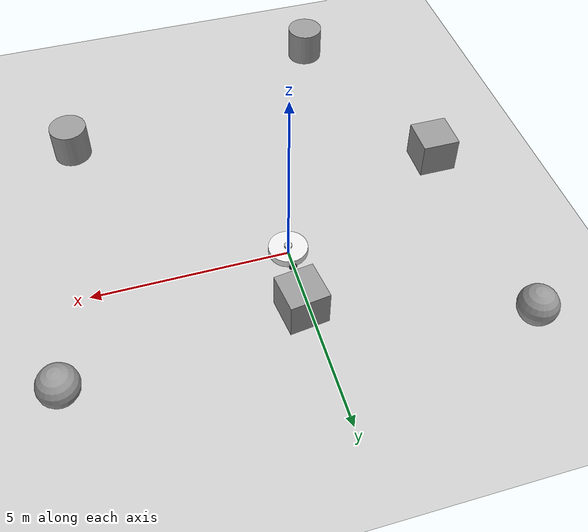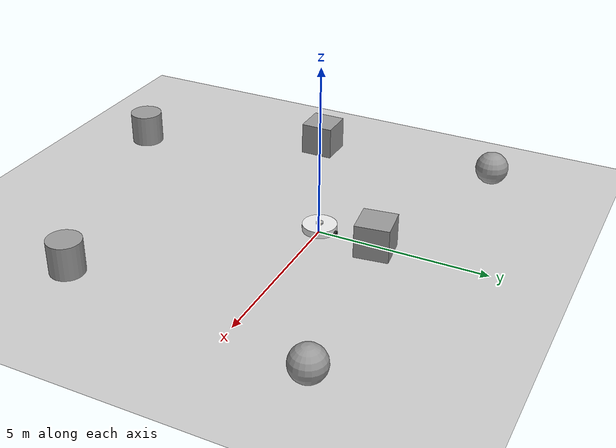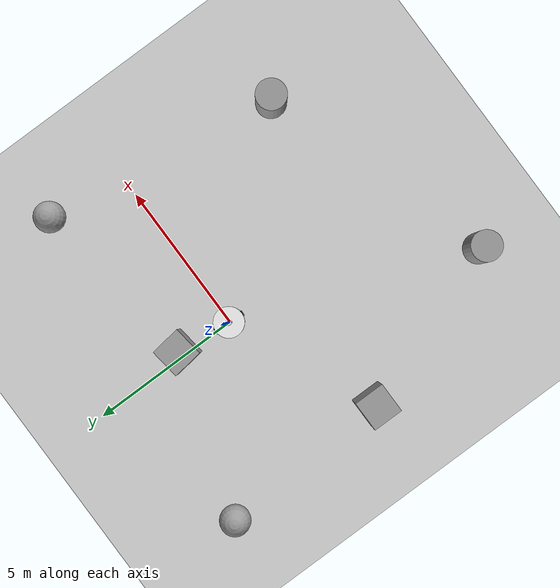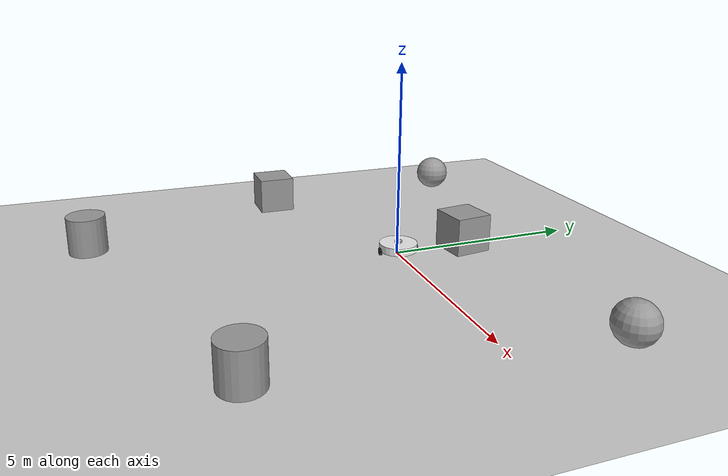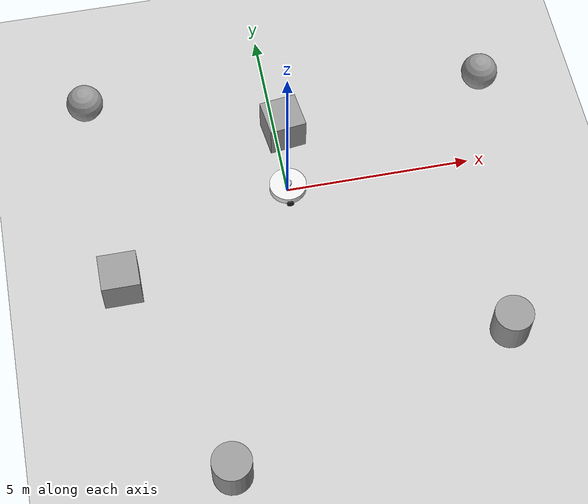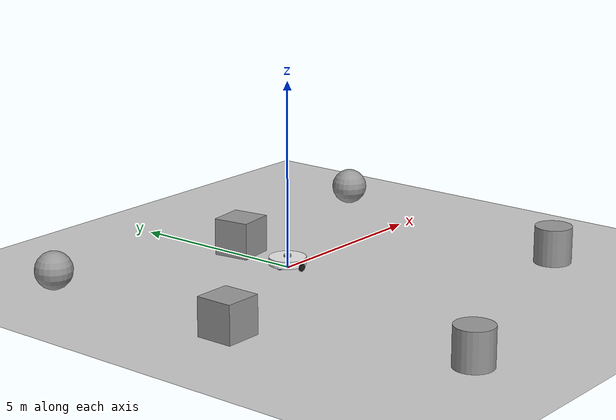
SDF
<sdf version="1.7">
 <world name="default">
  <light name="sun" type="directional">
   <pose>0 0 10 0 -0 0</pose>
   <diffuse>0.8 0.8 0.8 1</diffuse>
   <specular>0.2 0.2 0.2 1</specular>
   <attenuation>
    <range>1000</range>
    <constant>0.9</constant>
    <linear>0.01</linear>
    <quadratic>0.001</quadratic>
   </attenuation>
   <direction>-0.5 0.1 -0.9</direction>
   <spot><inner_angle>0</inner_angle><outer_angle>0</outer_angle><falloff>0</falloff></spot>
  </light>
  <model name="ground_plane">
   <static>1</static>
   <link name="link">
    <collision name="collision">
     <geometry><plane><normal>0 0 1</normal><size>100 100</size></plane></geometry>
     <surface><friction><ode><mu>100</mu><mu2>50</mu2></ode></friction></surface>
    </collision>
    <visual name="visual">
     <cast_shadows>0</cast_shadows>
     <geometry><plane><normal>0 0 1</normal><size>100 100</size></plane></geometry>
     <material>
      <script><uri>file://media/materials/scripts/gazebo.material</uri><name>Gazebo/Grey</name></script>
     </material>
    </visual>
   </link>
  </model>
  <gravity>0 0 -9.8</gravity>
  <magnetic_field>6e-06 2.3e-05 -4.2e-05</magnetic_field>
  <atmosphere type="adiabatic"/>
  <physics type="ode">
   <max_step_size>0.001</max_step_size>
   <real_time_factor>1</real_time_factor>
   <real_time_update_rate>1000</real_time_update_rate>
  </physics>
  <scene><ambient>0.4 0.4 0.4 1</ambient><background>0.7 0.7 0.7 1</background><shadows>1</shadows></scene>
  <audio><device>default</device></audio>
  <spherical_coordinates>
   <surface_model>EARTH_WGS84</surface_model>
   <latitude_deg>0</latitude_deg>
   <longitude_deg>0</longitude_deg>
   <elevation>0</elevation>
   <heading_deg>0</heading_deg>
  </spherical_coordinates>
  <model name="my_bot">
   <link name="base_link">
    <inertial>
     <pose>0 0 0.092308 0 -0 0</pose>
     <mass>6.5</mass>
     <inertia>
      <ixx>0.348511</ixx>
      <ixy>0</ixy>
      <ixz>0</ixz>
      <iyy>0.438511</iyy>
      <iyz>0</iyz>
      <izz>0.719625</izz>
     </inertia>
    </inertial>
    <collision name="base_link_fixed_joint_lump__back_caster_wheel_link_collision">
     <pose>-0.3 0 0 0 -0 0</pose>
     <geometry><sphere><radius>0.1</radius></sphere></geometry>
     <surface><friction><ode><mu>0.01</mu><mu2>0.01</mu2></ode></friction></surface>
    </collision>
    <collision name="base_link_fixed_joint_lump__chassis_link_collision_1">
     <pose>0 0 0.1 0 -0 0</pose>
     <geometry><cylinder><length>0.2</length><radius>0.5</radius></cylinder></geometry>
    </collision>
    <collision name="base_link_fixed_joint_lump__laser_frame_collision_2">
     <pose>0 0 0.2 0 -0 0</pose>
     <geometry><cylinder><length>0.1</length><radius>0.05</radius></cylinder></geometry>
    </collision>
    <collision name="base_link_fixed_joint_lump__front_caster_wheel_link_collision_3">
     <pose>0.3 0 0 0 -0 0</pose>
     <geometry><sphere><radius>0.1</radius></sphere></geometry>
     <surface><friction><ode><mu>0.01</mu><mu2>0.01</mu2></ode></friction></surface>
    </collision>
    <visual name="base_link_fixed_joint_lump__back_caster_wheel_link_visual">
     <pose>-0.3 0 0 0 -0 0</pose>
     <geometry><sphere><radius>0.1</radius></sphere></geometry>
     <material>
      <script><name>Gazebo/Black</name><uri>file://media/materials/scripts/gazebo.material</uri></script>
     </material>
    </visual>
    <visual name="base_link_fixed_joint_lump__chassis_link_visual_1">
     <pose>0 0 0.1 0 -0 0</pose>
     <geometry><cylinder><length>0.2</length><radius>0.5</radius></cylinder></geometry>
     <material>
      <script><name>Gazebo/White</name><uri>file://media/materials/scripts/gazebo.material</uri></script>
     </material>
    </visual>
    <visual name="base_link_fixed_joint_lump__laser_frame_visual_2">
     <pose>0 0 0.2 0 -0 0</pose>
     <geometry><cylinder><length>0.1</length><radius>0.1</radius></cylinder></geometry>
    </visual>
    <visual name="base_link_fixed_joint_lump__front_caster_wheel_link_visual_3">
     <pose>0.3 0 0 0 -0 0</pose>
     <geometry><sphere><radius>0.1</radius></sphere></geometry>
     <material>
      <script><name>Gazebo/Black</name><uri>file://media/materials/scripts/gazebo.material</uri></script>
     </material>
    </visual>
    <sensor name="laser" type="ray">
     <visualize>1</visualize>
     <update_rate>30</update_rate>
     <ray>
      <scan>
       <horizontal>
        <samples>360</samples>
        <min_angle>-3.14</min_angle>
        <max_angle>3.14</max_angle>
        <resolution>1</resolution>
       </horizontal>
       <vertical><samples>1</samples><min_angle>0</min_angle><max_angle>0</max_angle></vertical>
      </scan>
      <range><min>0.6</min><max>12</max></range>
     </ray>
     <plugin name="laser_controller" filename="libgazebo_ros_ray_sensor.so">
      <ros><argument>~/out:=scan</argument></ros>
      <output_type>sensor_msgs/LaserScan</output_type>
      <frame_name>laser_frame</frame_name>
     </plugin>
     <pose>0 0 0.2 0 -0 0</pose>
    </sensor>
   </link>
   <joint name="left_wheel_joint" type="revolute">
    <pose relative_to="base_link">0 0.5 0 -1.5708 0 0</pose>
    <parent>base_link</parent>
    <child>left_wheel_link</child>
    <axis>
     <xyz>0 0 1</xyz>
     <limit><lower>-1e+16</lower><upper>1e+16</upper></limit>
     <dynamics><spring_reference>0</spring_reference><spring_stiffness>0</spring_stiffness></dynamics>
    </axis>
   </joint>
   <link name="left_wheel_link">
    <pose relative_to="left_wheel_joint">0 0 0 0 -0 0</pose>
    <inertial>
     <mass>1</mass>
     <inertia>
      <ixx>0.00270833</ixx>
      <ixy>0</ixy>
      <ixz>0</ixz>
      <iyy>0.00270833</iyy>
      <iyz>0</iyz>
      <izz>0.005</izz>
     </inertia>
    </inertial>
    <collision name="left_wheel_link_collision">
     <geometry><cylinder><length>0.05</length><radius>0.1</radius></cylinder></geometry>
     <surface><friction><ode><mu>1</mu><mu2>1</mu2></ode></friction></surface>
    </collision>
    <visual name="left_wheel_link_visual">
     <geometry><cylinder><length>0.05</length><radius>0.1</radius></cylinder></geometry>
     <material>
      <script><name>Gazebo/Black</name><uri>file://media/materials/scripts/gazebo.material</uri></script>
     </material>
    </visual>
   </link>
   <joint name="right_wheel_joint" type="revolute">
    <pose relative_to="base_link">0 -0.5 0 1.5708 -0 0</pose>
    <parent>base_link</parent>
    <child>right_wheel_link</child>
    <axis>
     <xyz>0 0 1</xyz>
     <limit><lower>-1e+16</lower><upper>1e+16</upper></limit>
     <dynamics><spring_reference>0</spring_reference><spring_stiffness>0</spring_stiffness></dynamics>
    </axis>
   </joint>
   <link name="right_wheel_link">
    <pose relative_to="right_wheel_joint">0 0 0 0 -0 0</pose>
    <inertial>
     <mass>1</mass>
     <inertia>
      <ixx>0.00270833</ixx>
      <ixy>0</ixy>
      <ixz>0</ixz>
      <iyy>0.00270833</iyy>
      <iyz>0</iyz>
      <izz>0.005</izz>
     </inertia>
    </inertial>
    <collision name="right_wheel_link_collision">
     <geometry><cylinder><length>0.05</length><radius>0.1</radius></cylinder></geometry>
     <surface><friction><ode><mu>1</mu><mu2>1</mu2></ode></friction></surface>
    </collision>
    <visual name="right_wheel_link_visual">
     <geometry><cylinder><length>0.05</length><radius>0.1</radius></cylinder></geometry>
     <material>
      <script><name>Gazebo/Black</name><uri>file://media/materials/scripts/gazebo.material</uri></script>
     </material>
    </visual>
   </link>
   <static>0</static>
   <plugin name="diff_drive" filename="libgazebo_ros_diff_drive.so">
    <ros><namespace>/</namespace><remapping>cmd_vel:=cmd_vel</remapping><remapping>odom:=odom</remapping></ros>
    <left_joint>left_wheel_joint</left_joint>
    <right_joint>right_wheel_joint</right_joint>
    <wheel_separation>1.1</wheel_separation>
    <wheel_diameter>0.2</wheel_diameter>
    <max_wheel_torque>200.0</max_wheel_torque>
    <max_wheel_acceleration>10.0</max_wheel_acceleration>
    <odometry_frame>odom</odometry_frame>
    <robot_base_frame>base_link</robot_base_frame>
    <command_topic>cmd_vel</command_topic>
    <odometry_topic>odom</odometry_topic>
    <publish_odom>1</publish_odom>
    <publish_odom_tf>1</publish_odom_tf>
    <publish_wheel_tf>1</publish_wheel_tf>
    <update_rate>50</update_rate>
   </plugin>
   <pose>0.014306 0.022517 0.1 0 0 -0.046614</pose>
  </model>
  <model name="unit_box">
   <pose>0.210978 1.81237 0.5 1.5708 -0 0.130923</pose>
   <link name="link">
    <inertial>
     <mass>1</mass>
     <inertia>
      <ixx>0.166667</ixx>
      <ixy>0</ixy>
      <ixz>0</ixz>
      <iyy>0.166667</iyy>
      <iyz>0</iyz>
      <izz>0.166667</izz>
     </inertia>
    </inertial>
    <collision name="collision"><geometry><box><size>1 1 1</size></box></geometry></collision>
    <visual name="visual">
     <geometry><box><size>1 1 1</size></box></geometry>
     <material>
      <script><name>Gazebo/Grey</name><uri>file://media/materials/scripts/gazebo.material</uri></script>
     </material>
    </visual>
   </link>
  </model>
  <model name="unit_sphere">
   <pose>5.931 2.52562 0.5 0 -0 0</pose>
   <link name="link">
    <inertial>
     <mass>1</mass>
     <inertia><ixx>0.1</ixx><ixy>0</ixy><ixz>0</ixz><iyy>0.1</iyy><iyz>0</iyz><izz>0.1</izz></inertia>
    </inertial>
    <collision name="collision"><geometry><sphere><radius>0.5</radius></sphere></geometry></collision>
    <visual name="visual">
     <geometry><sphere><radius>0.5</radius></sphere></geometry>
     <material>
      <script><name>Gazebo/Grey</name><uri>file://media/materials/scripts/gazebo.material</uri></script>
     </material>
    </visual>
   </link>
  </model>
  <model name="unit_cylinder">
   <pose>-2.79455 -7.67563 0.499992 -3e-06 4e-06 0</pose>
   <link name="link">
    <inertial>
     <mass>1</mass>
     <inertia><ixx>0.145833</ixx><ixy>0</ixy><ixz>0</ixz><iyy>0.145833</iyy><iyz>0</iyz><izz>0.125</izz></inertia>
    </inertial>
    <collision name="collision">
     <geometry><cylinder><radius>0.5</radius><length>1</length></cylinder></geometry>
    </collision>
    <visual name="visual">
     <geometry><cylinder><radius>0.5</radius><length>1</length></cylinder></geometry>
     <material>
      <script><name>Gazebo/Grey</name><uri>file://media/materials/scripts/gazebo.material</uri></script>
     </material>
    </visual>
   </link>
  </model>
  <model name="unit_box_0">
   <pose>-4.76713 -2.12338 0.499995 0 1e-05 0</pose>
   <link name="link">
    <inertial>
     <mass>1</mass>
     <inertia>
      <ixx>0.166667</ixx>
      <ixy>0</ixy>
      <ixz>0</ixz>
      <iyy>0.166667</iyy>
      <iyz>0</iyz>
      <izz>0.166667</izz>
     </inertia>
    </inertial>
    <collision name="collision"><geometry><box><size>1 1 1</size></box></geometry></collision>
    <visual name="visual">
     <geometry><box><size>1 1 1</size></box></geometry>
     <material>
      <script><name>Gazebo/Grey</name><uri>file://media/materials/scripts/gazebo.material</uri></script>
     </material>
    </visual>
   </link>
  </model>
  <model name="unit_sphere_0">
   <pose>-5.02836 3.50213 0.5 0 -0 0</pose>
   <link name="link">
    <inertial>
     <mass>1</mass>
     <inertia><ixx>0.1</ixx><ixy>0</ixy><ixz>0</ixz><iyy>0.1</iyy><iyz>0</iyz><izz>0.1</izz></inertia>
    </inertial>
    <collision name="collision"><geometry><sphere><radius>0.5</radius></sphere></geometry></collision>
    <visual name="visual">
     <geometry><sphere><radius>0.5</radius></sphere></geometry>
     <material>
      <script><name>Gazebo/Grey</name><uri>file://media/materials/scripts/gazebo.material</uri></script>
     </material>
    </visual>
   </link>
  </model>
  <model name="unit_cylinder_0">
   <pose>4.78741 -5.16159 0.499997 3e-06 4e-06 -0</pose>
   <link name="link">
    <inertial>
     <mass>1</mass>
     <inertia><ixx>0.145833</ixx><ixy>0</ixy><ixz>0</ixz><iyy>0.145833</iyy><iyz>0</iyz><izz>0.125</izz></inertia>
    </inertial>
    <collision name="collision">
     <geometry><cylinder><radius>0.5</radius><length>1</length></cylinder></geometry>
    </collision>
    <visual name="visual">
     <geometry><cylinder><radius>0.5</radius><length>1</length></cylinder></geometry>
     <material>
      <script><name>Gazebo/Grey</name><uri>file://media/materials/scripts/gazebo.material</uri></script>
     </material>
    </visual>
   </link>
  </model>
 </world>
</sdf>
